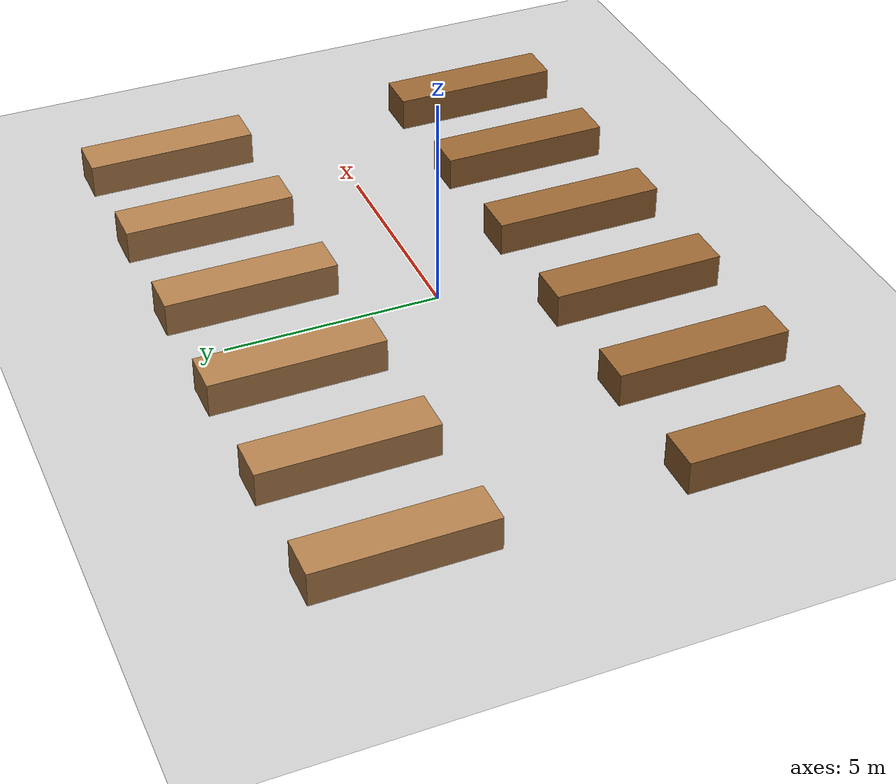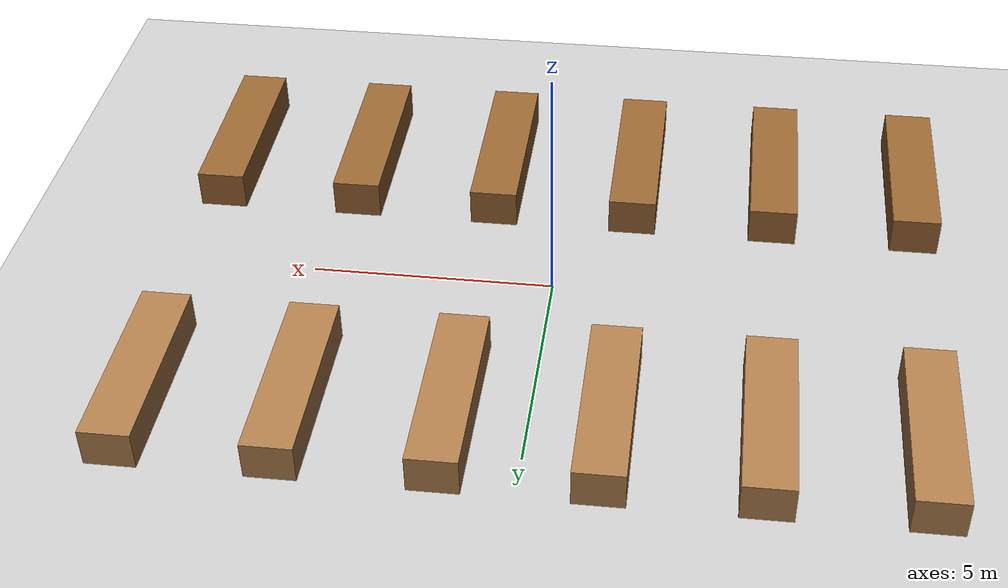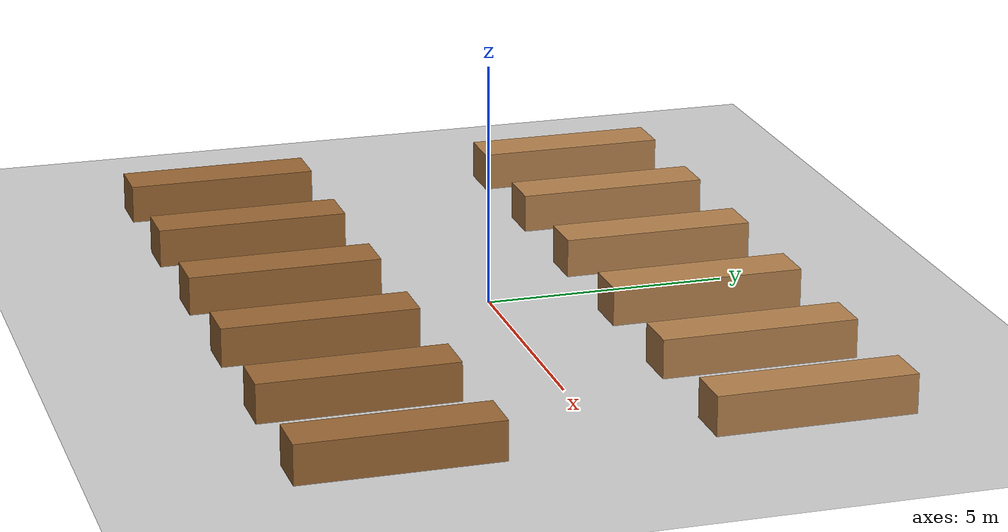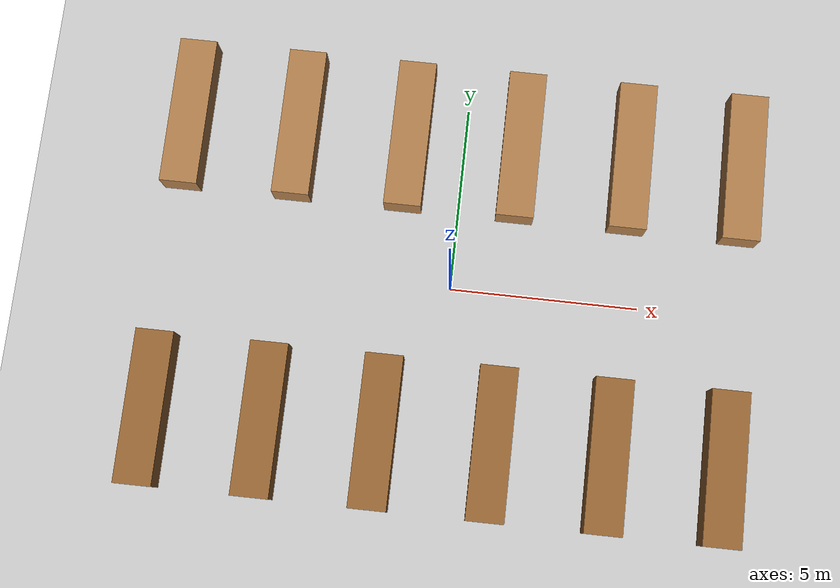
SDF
<sdf version="1.6">
 <world name="supermarket_grid_world">
  <light name="sun" type="directional">
   <pose>0 0 10 0 -0 0</pose>
   <diffuse>0.8 0.8 0.8 1</diffuse>
   <specular>0.2 0.2 0.2 1</specular>
   <attenuation>
    <range>1000</range>
    <constant>0.9</constant>
    <linear>0.01</linear>
    <quadratic>0.001</quadratic>
   </attenuation>
   <direction>-0.5 0.1 -0.9</direction>
   <spot><inner_angle>0</inner_angle><outer_angle>0</outer_angle><falloff>0</falloff></spot>
  </light>
  <model name="ground_plane">
   <static>1</static>
   <link name="link">
    <collision name="collision">
     <geometry><plane><normal>0 0 1</normal><size>100 100</size></plane></geometry>
     <surface>
      <contact><collide_bitmask>65535</collide_bitmask></contact>
      <friction><ode><mu>100</mu><mu2>50</mu2></ode></friction>
     </surface>
    </collision>
    <visual name="visual">
     <cast_shadows>0</cast_shadows>
     <geometry><plane><normal>0 0 1</normal><size>100 100</size></plane></geometry>
     <material>
      <script><uri>file://media/materials/scripts/gazebo.material</uri><name>Gazebo/Grey</name></script>
     </material>
    </visual>
   </link>
  </model>
  <gravity>0 0 -9.8</gravity>
  <magnetic_field>6e-06 2.3e-05 -4.2e-05</magnetic_field>
  <atmosphere type="adiabatic"/>
  <physics type="ode">
   <max_step_size>0.001</max_step_size>
   <real_time_factor>1</real_time_factor>
   <real_time_update_rate>1000</real_time_update_rate>
  </physics>
  <scene><ambient>0.4 0.4 0.4 1</ambient><background>0.7 0.7 0.7 1</background><shadows>1</shadows></scene>
  <model name="shelf_r1_c2">
   <static>true</static>
   <pose>-7.5 -4 0.4 0 0 0</pose>
   <link name="link">
    <collision name="col"><geometry><box><size>1.0 4.0 0.8</size></box></geometry></collision>
    <visual name="vis">
     <geometry><box><size>1.0 4.0 0.8</size></box></geometry>
     <material><ambient>0.6 0.4 0.2 1</ambient></material>
    </visual>
   </link>
  </model>
  <model name="shelf_r1_c3">
   <static>true</static>
   <pose>-4.5 -4 0.4 0 0 0</pose>
   <link name="link">
    <collision name="col"><geometry><box><size>1.0 4.0 0.8</size></box></geometry></collision>
    <visual name="vis">
     <geometry><box><size>1.0 4.0 0.8</size></box></geometry>
     <material><ambient>0.6 0.4 0.2 1</ambient></material>
    </visual>
   </link>
  </model>
  <model name="shelf_r1_c4">
   <static>true</static>
   <pose>-1.5 -4 0.4 0 0 0</pose>
   <link name="link">
    <collision name="col"><geometry><box><size>1.0 4.0 0.8</size></box></geometry></collision>
    <visual name="vis">
     <geometry><box><size>1.0 4.0 0.8</size></box></geometry>
     <material><ambient>0.6 0.4 0.2 1</ambient></material>
    </visual>
   </link>
  </model>
  <model name="shelf_r1_c5">
   <static>true</static>
   <pose>1.5 -4 0.4 0 0 0</pose>
   <link name="link">
    <collision name="col"><geometry><box><size>1.0 4.0 0.8</size></box></geometry></collision>
    <visual name="vis">
     <geometry><box><size>1.0 4.0 0.8</size></box></geometry>
     <material><ambient>0.6 0.4 0.2 1</ambient></material>
    </visual>
   </link>
  </model>
  <model name="shelf_r1_c6">
   <static>true</static>
   <pose>4.5 -4 0.4 0 0 0</pose>
   <link name="link">
    <collision name="col"><geometry><box><size>1.0 4.0 0.8</size></box></geometry></collision>
    <visual name="vis">
     <geometry><box><size>1.0 4.0 0.8</size></box></geometry>
     <material><ambient>0.6 0.4 0.2 1</ambient></material>
    </visual>
   </link>
  </model>
  <model name="shelf_r1_c7">
   <static>true</static>
   <pose>7.5 -4 0.4 0 0 0</pose>
   <link name="link">
    <collision name="col"><geometry><box><size>1.0 4.0 0.8</size></box></geometry></collision>
    <visual name="vis">
     <geometry><box><size>1.0 4.0 0.8</size></box></geometry>
     <material><ambient>0.6 0.4 0.2 1</ambient></material>
    </visual>
   </link>
  </model>
  <model name="shelf_r2_c2">
   <static>true</static>
   <pose>-7.5 4 0.4 0 0 0</pose>
   <link name="link">
    <collision name="col"><geometry><box><size>1.0 4.0 0.8</size></box></geometry></collision>
    <visual name="vis">
     <geometry><box><size>1.0 4.0 0.8</size></box></geometry>
     <material><ambient>0.7 0.5 0.3 1</ambient></material>
    </visual>
   </link>
  </model>
  <model name="shelf_r2_c3">
   <static>true</static>
   <pose>-4.5 4 0.4 0 0 0</pose>
   <link name="link">
    <collision name="col"><geometry><box><size>1.0 4.0 0.8</size></box></geometry></collision>
    <visual name="vis">
     <geometry><box><size>1.0 4.0 0.8</size></box></geometry>
     <material><ambient>0.7 0.5 0.3 1</ambient></material>
    </visual>
   </link>
  </model>
  <model name="shelf_r2_c4">
   <static>true</static>
   <pose>-1.5 4 0.4 0 0 0</pose>
   <link name="link">
    <collision name="col"><geometry><box><size>1.0 4.0 0.8</size></box></geometry></collision>
    <visual name="vis">
     <geometry><box><size>1.0 4.0 0.8</size></box></geometry>
     <material><ambient>0.7 0.5 0.3 1</ambient></material>
    </visual>
   </link>
  </model>
  <model name="shelf_r2_c5">
   <static>true</static>
   <pose>1.5 4 0.4 0 0 0</pose>
   <link name="link">
    <collision name="col"><geometry><box><size>1.0 4.0 0.8</size></box></geometry></collision>
    <visual name="vis">
     <geometry><box><size>1.0 4.0 0.8</size></box></geometry>
     <material><ambient>0.7 0.5 0.3 1</ambient></material>
    </visual>
   </link>
  </model>
  <model name="shelf_r2_c6">
   <static>true</static>
   <pose>4.5 4 0.4 0 0 0</pose>
   <link name="link">
    <collision name="col"><geometry><box><size>1.0 4.0 0.8</size></box></geometry></collision>
    <visual name="vis">
     <geometry><box><size>1.0 4.0 0.8</size></box></geometry>
     <material><ambient>0.7 0.5 0.3 1</ambient></material>
    </visual>
   </link>
  </model>
  <model name="shelf_r2_c7">
   <static>true</static>
   <pose>7.5 4 0.4 0 0 0</pose>
   <link name="link">
    <collision name="col"><geometry><box><size>1.0 4.0 0.8</size></box></geometry></collision>
    <visual name="vis">
     <geometry><box><size>1.0 4.0 0.8</size></box></geometry>
     <material><ambient>0.7 0.5 0.3 1</ambient></material>
    </visual>
   </link>
  </model>
 </world>
</sdf>
